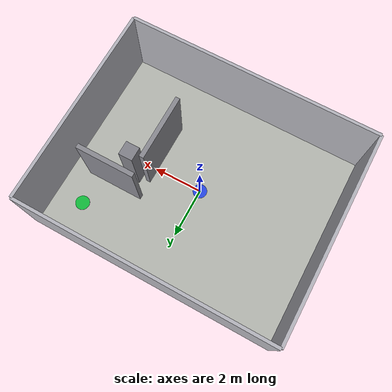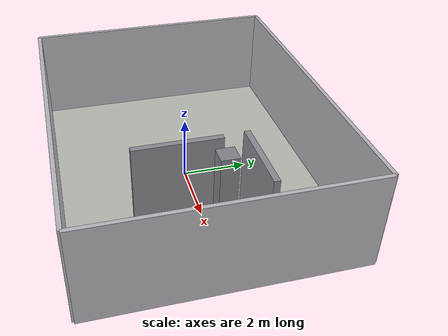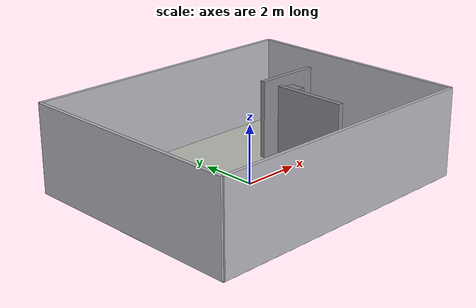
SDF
<sdf version="1.9">
 <world name="L4_S5_depth_camera">
  <physics name="1ms" type="ignore">
   <max_step_size>0.001</max_step_size>
   <real_time_factor>1.0</real_time_factor>
  </physics>
  <plugin filename="gz-sim-physics-system" name="gz::sim::systems::Physics"/>
  <plugin filename="gz-sim-sensors-system" name="gz::sim::systems::Sensors">
   <render_engine>ogre2</render_engine>
  </plugin>
  <plugin filename="gz-sim-user-commands-system" name="gz::sim::systems::UserCommands"/>
  <plugin filename="gz-sim-scene-broadcaster-system" name="gz::sim::systems::SceneBroadcaster"/>
  <plugin filename="gz-sim-imu-system" name="gz::sim::systems::Imu"/>
  <plugin filename="gz-sim-navsat-system" name="gz::sim::systems::NavSat"/>
  <scene><ambient>0.85 0.85 0.85</ambient><background>0.78 0.80 0.82</background><grid>false</grid></scene>
  <spherical_coordinates>
   <latitude_deg>-35.363262</latitude_deg>
   <longitude_deg>149.165237</longitude_deg>
   <elevation>584</elevation>
   <heading_deg>0</heading_deg>
   <surface_model>EARTH_WGS84</surface_model>
  </spherical_coordinates>
  <light type="directional" name="sun">
   <pose>0 0 8 0 0 0</pose>
   <diffuse>0.8 0.8 0.8 1</diffuse>
   <specular>0.3 0.3 0.3 1</specular>
   <attenuation>
    <range>1000</range>
    <constant>0.9</constant>
    <linear>0.01</linear>
    <quadratic>0.001</quadratic>
   </attenuation>
   <direction>-0.5 0.1 -0.9</direction>
  </light>
  <model name="l2_start_marker">
   <static>true</static>
   <pose>0.000 0.000 0.030 0 0 0</pose>
   <link name="link">
    <visual name="visual">
     <geometry><cylinder><radius>0.28</radius><length>0.04</length></cylinder></geometry>
     <material>
      <ambient>0.1 0.25 1.0 0.85</ambient>
      <diffuse>0.1 0.25 1.0 0.85</diffuse>
      <specular>0.25 0.25 0.25 1</specular>
     </material>
    </visual>
   </link>
  </model>
  <model name="l2_goal_marker">
   <static>true</static>
   <pose>3.800 2.600 0.030 0 0 0</pose>
   <link name="link">
    <visual name="visual">
     <geometry><cylinder><radius>0.28</radius><length>0.04</length></cylinder></geometry>
     <material>
      <ambient>0.0 0.8 0.2 0.85</ambient>
      <diffuse>0.0 0.8 0.2 0.85</diffuse>
      <specular>0.25 0.25 0.25 1</specular>
     </material>
    </visual>
   </link>
  </model>
  <model name="l2_floor">
   <static>true</static>
   <pose>0.000 0.000 -0.025 0 0 0</pose>
   <link name="link">
    <collision name="collision"><geometry><box><size>10.000 8.000 0.050</size></box></geometry></collision>
    <visual name="visual">
     <geometry><box><size>10.000 8.000 0.050</size></box></geometry>
     <material>
      <ambient>0.72 0.73 0.70 1</ambient>
      <diffuse>0.72 0.73 0.70 1</diffuse>
      <specular>0.25 0.25 0.25 1</specular>
     </material>
    </visual>
   </link>
  </model>
  <model name="l2_wall_x_positive">
   <static>true</static>
   <pose>5.000 0.000 1.500 0 0 0</pose>
   <link name="link">
    <collision name="collision"><geometry><box><size>0.120 8.000 3.000</size></box></geometry></collision>
    <visual name="visual">
     <geometry><box><size>0.120 8.000 3.000</size></box></geometry>
     <material>
      <ambient>0.72 0.72 0.75 1</ambient>
      <diffuse>0.72 0.72 0.75 1</diffuse>
      <specular>0.25 0.25 0.25 1</specular>
     </material>
    </visual>
   </link>
  </model>
  <model name="l2_wall_x_negative">
   <static>true</static>
   <pose>-5.000 0.000 1.500 0 0 0</pose>
   <link name="link">
    <collision name="collision"><geometry><box><size>0.120 8.000 3.000</size></box></geometry></collision>
    <visual name="visual">
     <geometry><box><size>0.120 8.000 3.000</size></box></geometry>
     <material>
      <ambient>0.72 0.72 0.75 1</ambient>
      <diffuse>0.72 0.72 0.75 1</diffuse>
      <specular>0.25 0.25 0.25 1</specular>
     </material>
    </visual>
   </link>
  </model>
  <model name="l2_wall_y_positive">
   <static>true</static>
   <pose>0.000 4.000 1.500 0 0 0</pose>
   <link name="link">
    <collision name="collision"><geometry><box><size>10.000 0.120 3.000</size></box></geometry></collision>
    <visual name="visual">
     <geometry><box><size>10.000 0.120 3.000</size></box></geometry>
     <material>
      <ambient>0.72 0.72 0.75 1</ambient>
      <diffuse>0.72 0.72 0.75 1</diffuse>
      <specular>0.25 0.25 0.25 1</specular>
     </material>
    </visual>
   </link>
  </model>
  <model name="l2_wall_y_negative">
   <static>true</static>
   <pose>0.000 -4.000 1.500 0 0 0</pose>
   <link name="link">
    <collision name="collision"><geometry><box><size>10.000 0.120 3.000</size></box></geometry></collision>
    <visual name="visual">
     <geometry><box><size>10.000 0.120 3.000</size></box></geometry>
     <material>
      <ambient>0.72 0.72 0.75 1</ambient>
      <diffuse>0.72 0.72 0.75 1</diffuse>
      <specular>0.25 0.25 0.25 1</specular>
     </material>
    </visual>
   </link>
  </model>
  <model name="corner_vertical_wall">
   <static>true</static>
   <pose>2.000 -0.700 1.350 0 0 0</pose>
   <link name="link">
    <collision name="collision"><geometry><box><size>0.180 2.600 2.700</size></box></geometry></collision>
    <visual name="visual">
     <geometry><box><size>0.180 2.600 2.700</size></box></geometry>
     <material>
      <ambient>0.55 0.55 0.58 1</ambient>
      <diffuse>0.55 0.55 0.58 1</diffuse>
      <specular>0.25 0.25 0.25 1</specular>
     </material>
    </visual>
   </link>
  </model>
  <model name="corner_horizontal_wall">
   <static>true</static>
   <pose>3.050 1.300 1.350 0 0 0</pose>
   <link name="link">
    <collision name="collision"><geometry><box><size>2.300 0.180 2.700</size></box></geometry></collision>
    <visual name="visual">
     <geometry><box><size>2.300 0.180 2.700</size></box></geometry>
     <material>
      <ambient>0.55 0.55 0.58 1</ambient>
      <diffuse>0.55 0.55 0.58 1</diffuse>
      <specular>0.25 0.25 0.25 1</specular>
     </material>
    </visual>
   </link>
  </model>
  <model name="corner_inner_block">
   <static>true</static>
   <pose>2.550 0.550 1.250 0 0 0</pose>
   <link name="link">
    <collision name="collision"><geometry><box><size>0.550 0.550 2.500</size></box></geometry></collision>
    <visual name="visual">
     <geometry><box><size>0.550 0.550 2.500</size></box></geometry>
     <material>
      <ambient>0.52 0.52 0.55 1</ambient>
      <diffuse>0.52 0.52 0.55 1</diffuse>
      <specular>0.25 0.25 0.25 1</specular>
     </material>
    </visual>
   </link>
  </model>
 </world>
</sdf>
